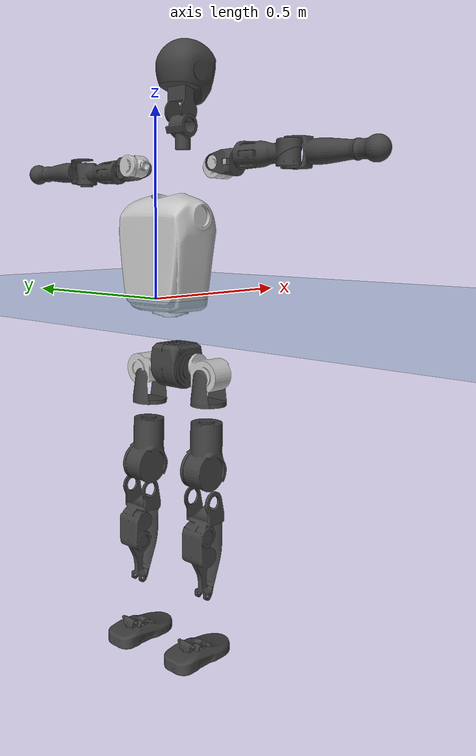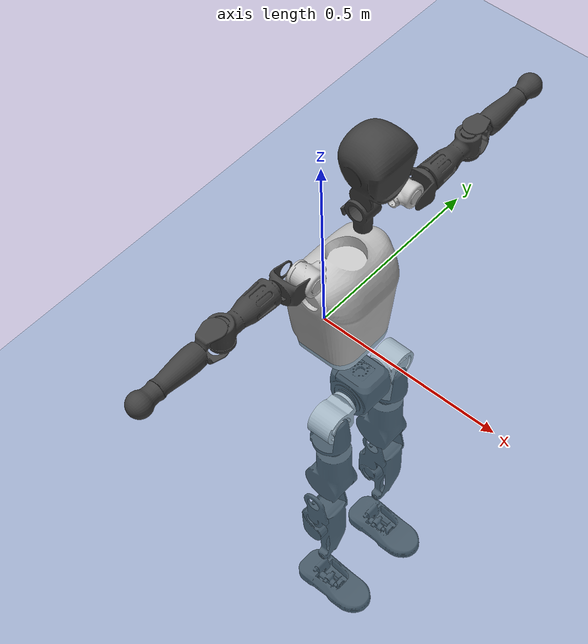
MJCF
<mujoco model="T1">
  <compiler angle="radian" assetdir="assets" balanceinertia="true" inertiafromgeom="false"/>

  <option timestep="0.005" density="1.2" viscosity="2e-05"/>

  <size nkey="1"/>

  <visual>
    <quality shadowsize="8192"/>
    <map shadowclip="0.5"/>
  </visual>

  <default>
    <default class="/">
      <joint armature="0.01" damping="0.01" frictionloss="0.1"/>
      <geom contype="0" conaffinity="0" group="1" solref="-1000 -80"/>
      <site size="0.01 0.005 0.005" group="5"/>
      <general forcelimited="true" biastype="affine" gainprm="25" biasprm="0 -25 -0.6"/>
      <default class="t1">
        <geom rgba="0.25 0.25 0.25 1"/>
        <default class="visual">
          <geom type="mesh" group="2"/>
        </default>
        <default class="collision">
          <geom group="3"/>
        </default>
        <default class="foot">
          <geom size="0.1115 0.05 0.015" type="box" condim="6" group="4" priority="1" solimp="0.015 1 0.015"/>
        </default>
        <default class="reward_collision_sphere">
          <geom group="5" rgba="1 0 0 1"/>
        </default>
      </default>
    </default>
  </default>

  <asset>
    <texture type="skybox" colorspace="auto" name="//unnamed_texture_0" builtin="gradient" rgb1="0.95 0.95 0.95" rgb2="0.95 0.95 0.95" width="100" height="600"/>
    <texture type="2d" colorspace="auto" name="texplane" builtin="checker" rgb1="0.345 0.575 0.748" rgb2="0.345 0.575 0.748" markrgb="1 1 1" width="512" height="512"/>
    <material name="MatPlane" class="/" texture="texplane" texuniform="true" texrepeat="2 2" specular="0.9"/>
    <mesh name="Trunk" class="/" file="Trunk.stl"/>
    <mesh name="H1" class="/" file="H1.stl"/>
    <mesh name="H2" class="/" file="H2.stl"/>
    <mesh name="AL1" class="/" file="AL1.stl"/>
    <mesh name="AL2" class="/" file="AL2.stl"/>
    <mesh name="AL3" class="/" file="AL3.stl"/>
    <mesh name="left_hand_link" class="/" file="left_hand_link.stl"/>
    <mesh name="AR1" class="/" file="AR1.stl"/>
    <mesh name="AR2" class="/" file="AR2.stl"/>
    <mesh name="AR3" class="/" file="AR3.stl"/>
    <mesh name="right_hand_link" class="/" file="right_hand_link.stl"/>
    <mesh name="Waist" class="/" file="Waist.stl"/>
    <mesh name="Hip_Pitch_Left" class="/" file="Hip_Pitch_Left.stl"/>
    <mesh name="Hip_Roll_Left" class="/" file="Hip_Roll_Left.stl"/>
    <mesh name="Hip_Yaw_Left" class="/" file="Hip_Yaw_Left.stl"/>
    <mesh name="Shank_Left" class="/" file="Shank_Left.stl"/>
    <mesh name="Ankle_Cross_Left" class="/" file="Ankle_Cross_Left.stl"/>
    <mesh name="left_foot_link" class="/" file="left_foot_link.stl"/>
    <mesh name="Hip_Pitch_Right" class="/" file="Hip_Pitch_Right.stl"/>
    <mesh name="Hip_Roll_Right" class="/" file="Hip_Roll_Right.stl"/>
    <mesh name="Hip_Yaw_Right" class="/" file="Hip_Yaw_Right.stl"/>
    <mesh name="Shank_Right" class="/" file="Shank_Right.stl"/>
    <mesh name="Ankle_Cross_Right" class="/" file="Ankle_Cross_Right.stl"/>
    <mesh name="right_foot_link" class="/" file="right_foot_link.stl"/>
  </asset>

  <worldbody>
    <geom name="floor" class="/" size="100 100 0.125" type="plane" group="0" material="MatPlane"/>
    <light name="toplight_shadow" class="/" pos="0 0 5" dir="0.0990148 0.0990148 -0.990148" type="directional" ambient="0.04 0.04 0.04" diffuse="0.55 0.55 0.55" specular="0.12 0.12 0.12"/>
    <light name="toplight_fill" class="/" pos="0 0 5" dir="0.0990148 0.0990148 -0.990148" type="directional" castshadow="false" ambient="0.04 0.04 0.04" diffuse="0.3 0.3 0.3" specular="0.08 0.08 0.08"/>
    <body name="trunk" childclass="t1" pos="0.000215709 0.00687953 -0.000407993" quat="0.999988 -0.000725459 0.0047439 -0.000696432">
      <inertial pos="0.0833393 0.00499946 0.165158" quat="0.998694 -0.0410913 -0.0196817 0.0231266" mass="33.0852" diaginertia="0.562615 0.139266 0.464196"/>
      <joint name="//unnamed_joint_0" type="free" armature="0" damping="0" frictionloss="0"/>
      <geom name="//unnamed_geom_1" class="visual" rgba="0.76 0.76 0.76 1" mesh="Trunk"/>
      <geom name="//unnamed_geom_2" class="collision" size="0.106228 0.141638 0.212457" pos="0.0923833 0 0.189311" type="box"/>
      <geom name="//unnamed_geom_3" class="reward_collision_sphere" size="0.162884" pos="0.0923833 0 0.157759"/>
      <geom name="//unnamed_geom_4" class="reward_collision_sphere" size="0.0212457" pos="0.0923833 0.0962052 0"/>
      <geom name="//unnamed_geom_5" class="reward_collision_sphere" size="0.0212457" pos="0.0923833 -0.0962052 0"/>
      <geom name="//unnamed_geom_6" class="reward_collision_sphere" size="0.0212457" pos="0.0923833 0.121105 0.283966"/>
      <geom name="//unnamed_geom_7" class="reward_collision_sphere" size="0.0212457" pos="0.0923833 -0.121105 0.283966"/>
      <site name="imu" pos="-0.0467178 0.00181181 0.0459124" size="0.0141638"/>
      <camera name="track" pos="0 -2.26365 0" quat="0.707107 0.707107 0 0" mode="trackcom"/>
      <camera name="ego_camera" pos="0.187846 0 0.662587" quat="-0.5 -0.5 0.5 0.5"/>
      <body name="H1" pos="0.106685 -0.000142672 0.396114" quat="1 -0.000356309 -0.000557852 -0.000145402">
        <inertial pos="-0.000462777 -0.00114985 0.0905988" quat="0.764369 -0.00881814 0.00222871 0.644715" mass="1.23745" diaginertia="0.00228655 0.000392488 0.00145489"/>
        <joint name="AAHead_yaw" pos="0 0 0" axis="0.00214203 -0.0105354 0.999942" range="-1.75627 1.57227" armature="0.00516061" damping="0.00613313" frictionloss="0.056131"/>
        <geom name="//unnamed_geom_8" class="visual" mesh="H1"/>
        <body name="H2" pos="0.00591827 0.0147744 0.101159" quat="0.999996 0.00023065 -0.00268571 -0.000333348">
          <inertial pos="0.00148926 0.0123439 0.169416" quat="0.988996 0.113605 -0.0905005 -0.0281144" mass="1.65135" diaginertia="0.0172885 0.0041857 0.0170557"/>
          <joint name="Head_pitch" pos="0 0 0" axis="-0.0209105 -0.999726 0.0105246" range="-1.2514 0.420001" armature="0.00826019" damping="0.0682692" frictionloss="0.130629"/>
          <geom name="//unnamed_geom_9" class="visual" mesh="H2"/>
          <geom name="//unnamed_geom_10" class="collision" size="0.11331" pos="0.0153972 0 0.173535"/>
          <geom name="//unnamed_geom_11" class="reward_collision_sphere" size="0.127474" pos="0.0307944 0 0.157759"/>
        </body>
      </body>
      <body name="AL1" pos="0.08592 0.120423 0.358141" quat="0.999977 -0.00454639 0.00152108 0.00470918">
        <inertial pos="0.00733076 0.0498213 0.000657513" quat="0.504763 0.497413 -0.500764 0.497021" mass="1.64325" diaginertia="0.012783 0.00305047 0.00355031"/>
        <joint name="Left_Shoulder_Pitch" pos="0 0 0" axis="0.0089598 0.998869 0.0467001" range="-3.15779 0.955515" armature="0.013353" damping="0.0693185" frictionloss="0.0913154"/>
        <geom name="//unnamed_geom_12" class="visual" rgba="0.76 0.76 0.76 1" mesh="AL1"/>
        <body name="AL2" pos="0.0120238 0.0481384 -0.0048547" quat="1 -3.52009e-05 -7.27225e-05 -8.74121e-05">
          <inertial pos="0.0118498 0.0304326 0.00664536" quat="0.482775 0.507863 -0.48942 0.519107" mass="0.41318" diaginertia="0.00313563 0.000556377 0.0016941"/>
          <joint name="Left_Shoulder_Roll" pos="0 0 0" axis="-0.999953 -0.00582532 0.00778289" stiffness="0.0732214" range="-1.70565 1.73065" armature="0.00495396" damping="0.0104213" frictionloss="0.14837"/>
          <geom name="//unnamed_geom_13" class="visual" mesh="AL2"/>
          <body name="AL3" pos="-0.00458504 0.0689166 -0.00730954" quat="0.999999 0.00138184 -0.000138567 0.000732747">
            <inertial pos="-0.0116382 0.109234 -0.00557839" quat="0.722936 0.690323 -0.00518675 0.0281104" mass="3.77027" diaginertia="0.108355 0.0268179 0.00768036"/>
            <joint name="Left_Elbow_Pitch" pos="0 0 0" axis="-0.00219658 -0.999468 0.0325361" stiffness="0.0283299" range="-2.00085 2.38095" armature="0.0040386" damping="0.0272491" frictionloss="0.138615"/>
            <geom name="//unnamed_geom_14" class="visual" mesh="AL3"/>
            <geom name="//unnamed_geom_15" class="collision" size="0.0424914 0.106228" pos="0 0.0565913 0" quat="0.707105 0.707108 0 0" type="cylinder"/>
            <geom name="//unnamed_geom_16" class="reward_collision_sphere" size="0.0509896"/>
            <body name="left_hand_link" pos="0.00332127 0.164157 0.00855297" quat="0.999978 -0.000566005 -0.00253452 0.00604207">
              <inertial pos="0.0133973 0.118238 -0.000969415" quat="0.697068 0.716965 -0.00739447 0.00167934" mass="0.904945" diaginertia="0.0798476 0.0138254 0.00176357"/>
              <joint name="Left_Elbow_Yaw" pos="0 0 0" axis="-0.000105742 0.000270448 1" range="-2.43088 0.273785" armature="0.015414" damping="0" frictionloss="0.146699"/>
              <geom name="//unnamed_geom_17" class="visual" mesh="left_hand_link"/>
              <geom name="//unnamed_geom_18" class="collision" size="0.0424914 0.123933" pos="0 0.147137 0" quat="0.707105 0.707108 0 0" type="cylinder"/>
              <geom name="//unnamed_geom_19" class="reward_collision_sphere" size="0.0708189"/>
              <geom name="//unnamed_geom_20" class="reward_collision_sphere" size="0.0495733" pos="0 0.124501 0"/>
              <geom name="//unnamed_geom_21" class="reward_collision_sphere" size="0.0495733" pos="0 0.243342 0"/>
            </body>
          </body>
        </body>
      </body>
      <body name="AR1" pos="0.0832979 -0.108203 0.343657" quat="0.999997 -0.000142245 -0.00193501 -0.00131107">
        <inertial pos="0.00727192 -0.0363687 0.0033589" quat="0.475999 0.487148 -0.529861 0.505331" mass="1.62159" diaginertia="0.0145826 0.00274188 0.00303115"/>
        <joint name="Right_Shoulder_Pitch" pos="0 0 0" axis="-0.0358559 -0.99841 0.0434988" stiffness="0.0716516" range="-1.21633 3.45224" armature="0.00613981" damping="0.0359815" frictionloss="0.187701"/>
        <geom name="//unnamed_geom_22" class="visual" rgba="0.76 0.76 0.76 1" mesh="AR1"/>
        <body name="AR2" pos="-0.0136431 -0.0617595 0.00771476" quat="0.999982 0.00410094 -0.00060119 -0.00444239">
          <inertial pos="0.0143929 -0.0425871 0.0051243" quat="0.534648 0.485522 -0.509248 0.468067" mass="0.524029" diaginertia="0.00348826 0.000543742 0.00179285"/>
          <joint name="Right_Shoulder_Roll" pos="0 0 0" axis="-0.999926 -0.00272661 -0.0118622" stiffness="0.00283825" range="-1.84223 1.47688" armature="0.015212" damping="0" frictionloss="0.0384282"/>
          <geom name="//unnamed_geom_23" class="visual" mesh="AR2"/>
          <body name="AR3" pos="-0.0078668 -0.0735165 0.014844" quat="1 2.66382e-05 0.000317929 8.67295e-05">
            <inertial pos="8.51905e-05 -0.0843727 0.00585044" quat="0.677119 0.734836 0.0390488 -0.00101878" mass="2.92667" diaginertia="0.112767 0.0251264 0.0052736"/>
            <joint name="Right_Elbow_Pitch" pos="0 0 0" axis="-0.00622966 0.998301 0.0579314" range="-2.03649 2.42587" armature="0.0234268" damping="0.00347552" frictionloss="0.0810253"/>
            <geom name="//unnamed_geom_24" class="visual" mesh="AR3"/>
            <geom name="//unnamed_geom_25" class="collision" size="0.0424914 0.106228" pos="0 -0.0565913 0" quat="0.707105 0.707108 0 0" type="cylinder"/>
            <geom name="//unnamed_geom_26" class="reward_collision_sphere" size="0.0509896"/>
            <body name="right_hand_link" pos="0.000646405 -0.1655 -0.00141027" quat="0.999986 0.000624856 0.00154362 0.00506426">
              <inertial pos="-0.000284086 -0.117575 -0.0114412" quat="0.70696 0.70725 0.00229174 0.000299544" mass="1.03412" diaginertia="0.077411 0.0162614 0.00225639"/>
              <joint name="Right_Elbow_Yaw" pos="0 0 0" axis="0.0391524 0.0120548 0.999161" range="0.00528121 2.26668" armature="0.00539471" damping="0.0812525" frictionloss="0.073861"/>
              <geom name="//unnamed_geom_27" class="visual" mesh="right_hand_link"/>
              <geom name="//unnamed_geom_28" class="collision" size="0.0424914 0.123933" pos="0 -0.147137 0" quat="0.707105 0.707108 0 0" type="cylinder"/>
              <geom name="//unnamed_geom_29" class="reward_collision_sphere" size="0.0708189"/>
              <geom name="//unnamed_geom_30" class="reward_collision_sphere" size="0.0495733" pos="0 -0.124501 0"/>
              <geom name="//unnamed_geom_31" class="reward_collision_sphere" size="0.0495733" pos="0 -0.243342 0"/>
            </body>
          </body>
        </body>
      </body>
      <body name="Waist" pos="0.0991701 0.0109201 -0.195787" quat="1 0.000287619 -3.2111e-05 -0.000169859">
        <inertial pos="0.0155578 0.00284126 0.00945788" quat="0.989638 0.00686563 -0.138513 -0.0372052" mass="8.67094" diaginertia="0.0536132 0.0117011 0.0538265"/>
        <joint name="Waist" pos="0 0 0" axis="0.0453054 -0.0375743 0.998266" stiffness="0.037533" range="-1.62146 1.81095" armature="0.0146158" damping="0" frictionloss="0.0607923"/>
        <geom name="//unnamed_geom_32" class="visual" mesh="Waist"/>
        <body name="Hip_Pitch_Left" pos="-1.58578e-06 0.122074 0.00258876" quat="0.999994 0.00270416 0.00188098 -0.000870693">
          <inertial pos="0.00200415 -0.00183279 -0.0281131" quat="0.976316 0.215895 0.00553792 0.0128864" mass="2.65407" diaginertia="0.0155345 0.00227363 0.0112529"/>
          <joint name="Left_Hip_Pitch" pos="0 0 0" axis="0.0580927 0.997248 -0.0460604" stiffness="0.0667647" range="-1.76932 1.30433" armature="0.00943651" damping="0.0608562" frictionloss="0.138574"/>
          <geom name="//unnamed_geom_33" class="visual" rgba="0.76 0.76 0.76 1" mesh="Hip_Pitch_Left"/>
          <body name="Hip_Roll_Left" pos="0.00427276 -0.0149043 -0.0426777" quat="0.999974 0.00479681 0.00511148 0.00170417">
            <inertial pos="0.0122068 0.000970944 -0.0871495" quat="0.710047 -0.0147834 -0.0259146 0.703522" mass="1.32781" diaginertia="0.0149957 0.00330439 0.00587881"/>
            <joint name="Left_Hip_Roll" pos="0 0 0" axis="-0.99782 0.0477332 0.0455651" range="-1.68474 0.181435" armature="0.0189018" damping="0.0125715" frictionloss="0.159706"/>
            <geom name="//unnamed_geom_34" class="visual" mesh="Hip_Roll_Left"/>
            <geom name="//unnamed_geom_35" class="reward_collision_sphere" size="0.0779008"/>
            <body name="Hip_Yaw_Left" pos="-0.00550357 -0.00180443 -0.12335" quat="1 -0.0003482 -0.000127358 6.3779e-05">
              <inertial pos="-0.0116029 -0.00361383 -0.140413" quat="0.670305 -0.020153 0.0205256 0.741528" mass="7.61587" diaginertia="0.222812 0.0554206 0.0290497"/>
              <joint name="Left_Hip_Yaw" pos="0 0 0" axis="0.000340466 -0.000955764 -0.999999" range="-0.810224 1.04232" armature="0.0144061" damping="0" frictionloss="0.135828"/>
              <geom name="//unnamed_geom_36" class="visual" mesh="Hip_Yaw_Left"/>
              <geom name="//unnamed_geom_37" class="collision" size="0.0708189 0.11331" type="cylinder"/>
              <body name="Shank_Left" pos="-0.0167587 0.0121239 -0.210603" quat="1 -0.000707019 4.04598e-05 0.000318141">
                <inertial pos="-0.00388175 0.0103179 -0.195569" quat="0.995339 -0.0510483 -0.0316126 0.0754659" mass="4.01653" diaginertia="0.272635 0.0573249 0.018898"/>
                <joint name="Left_Knee_Pitch" pos="0 0 0" axis="-0.00729712 0.999713 0.0228022" range="-0.103883 2.47672" armature="0.00620328" damping="0.0569304" frictionloss="0.165229"/>
                <geom name="//unnamed_geom_38" class="visual" mesh="Shank_Left"/>
                <geom name="//unnamed_geom_39" class="collision" size="0.0708189 0.106228" pos="0 0 -0.189311" type="cylinder"/>
                <geom name="//unnamed_geom_40" class="reward_collision_sphere" size="0.0920646"/>
                <body name="Ankle_Cross_Left" pos="0.000756749 -0.00938519 -0.430869" quat="0.999982 0.00520269 -0.00150781 0.0026989">
                  <inertial pos="0.000761454 0.0138347 -0.0110163" quat="0.437211 0.583969 0.515409 0.449645" mass="0.209011" diaginertia="0.000247391 4.07862e-05 9.77566e-05"/>
                  <joint name="Left_Ankle_Pitch" pos="0 0 0" axis="0.0247151 0.999104 -0.0343646" stiffness="0.016692" range="-0.924644 0.262445" armature="0.0173095" damping="0.00810713" frictionloss="0.13608"/>
                  <geom name="//unnamed_geom_41" class="visual" mesh="Ankle_Cross_Left"/>
                  <body name="left_foot_link" pos="0.0109809 0.0135479 -0.0144151" quat="1 -0.000757512 -0.00010622 2.98368e-05">
                    <inertial pos="-0.0120346 0.000256511 -0.0286576" quat="-0.00920044 0.626436 -0.0123453 0.77932" mass="2.00768" diaginertia="0.0251859 0.00448383 0.0237262"/>
                    <joint name="Left_Ankle_Roll" pos="0 0 0" axis="-0.999971 -0.0064689 0.00391233" range="-0.464817 0.448638" armature="0.0231569" damping="0.0486297" frictionloss="0.135143"/>
                    <geom name="//unnamed_geom_42" class="visual" mesh="left_foot_link"/>
                    <geom name="left_foot" class="foot" size="0.127509 0.0967226 0.0183477" pos="0.0153972 0 -0.0236638"/>
                    <geom name="//unnamed_geom_44" class="reward_collision_sphere" size="0.0736517" pos="0.0153972 0 -0.0236638"/>
                    <geom name="//unnamed_geom_45" class="reward_collision_sphere" size="0.0424914" pos="0.146274 -0.026032 -0.0236638"/>
                    <geom name="//unnamed_geom_46" class="reward_collision_sphere" size="0.0424914" pos="-0.107781 -0.026032 -0.0236638"/>
                    <site name="left_foot" class="foot" pos="0.0153972 0 -0.0236638" size="0.0141638"/>
                  </body>
                </body>
              </body>
            </body>
          </body>
        </body>
        <body name="Hip_Pitch_Right" pos="0.0103093 -0.121956 0.0086086" quat="0.999975 0.00237048 -0.00456307 0.00489326">
          <inertial pos="0.00309096 0.0234698 -0.0294961" quat="0.967984 -0.249805 -0.0138127 -0.0203356" mass="3.01763" diaginertia="0.0182015 0.00314625 0.0149776"/>
          <joint name="Right_Hip_Pitch" pos="0 0 0" axis="-0.00177247 -0.999995 -0.00259616" stiffness="0.0235248" range="-1.37849 1.8247" armature="0.0188143" damping="0.013079" frictionloss="0.0465589"/>
          <geom name="//unnamed_geom_47" class="visual" rgba="0.76 0.76 0.76 1" mesh="Hip_Pitch_Right"/>
          <body name="Hip_Roll_Right" pos="-0.00219503 0.00535056 -0.026149" quat="1 0.000608492 -0.000117365 0.000255251">
            <inertial pos="0.0140461 -0.0142203 -0.0711514" quat="0.70843 0.0243795 -0.00356635 0.705351" mass="1.03153" diaginertia="0.0139294 0.00274753 0.00492148"/>
            <joint name="Right_Hip_Roll" pos="0 0 0" axis="-0.999997 0.00071406 -0.00213813" range="-0.178262 1.56693" armature="0.00971255" damping="0.000109395" frictionloss="0.131619"/>
            <geom name="//unnamed_geom_48" class="visual" mesh="Hip_Roll_Right"/>
            <geom name="//unnamed_geom_49" class="reward_collision_sphere" size="0.0779008"/>
            <body name="Hip_Yaw_Right" pos="0.000192271 0.00861675 -0.127013" quat="0.999995 0.00208199 -0.00197069 0.00115043">
              <inertial pos="-0.0193922 0.00846613 -0.143924" quat="0.715039 -0.0288074 -0.0334828 0.697688" mass="6.33411" diaginertia="0.198247 0.0471882 0.0243747"/>
              <joint name="Right_Hip_Yaw" pos="0 0 0" axis="0.00590808 -0.00294698 -0.999978" stiffness="0.00306924" range="-0.957188 1.22162" armature="0.0245787" damping="0" frictionloss="0.0514928"/>
              <geom name="//unnamed_geom_50" class="visual" mesh="Hip_Yaw_Right"/>
              <geom name="//unnamed_geom_51" class="collision" size="0.0708189 0.11331" type="cylinder"/>
              <body name="Shank_Right" pos="-0.0266715 -0.0129848 -0.213663" quat="0.999982 -0.00290371 -0.00533027 0.000336916">
                <inertial pos="-0.00868892 -0.0103518 -0.206953" quat="0.997818 0.0433323 -0.0410496 -0.0282121" mass="5.71326" diaginertia="0.332472 0.0649356 0.0155848"/>
                <joint name="Right_Knee_Pitch" pos="0 0 0" axis="0.0479694 -0.998327 0.0322685" stiffness="0.0022202" range="-2.56354 0.21595" armature="0.0157634" damping="0" frictionloss="0.17882"/>
                <geom name="//unnamed_geom_52" class="visual" mesh="Shank_Right"/>
                <geom name="//unnamed_geom_53" class="collision" size="0.0708189 0.106228" pos="0 0 -0.189311" type="cylinder"/>
                <geom name="//unnamed_geom_54" class="reward_collision_sphere" size="0.0920646"/>
                <body name="Ankle_Cross_Right" pos="-0.00723568 0.0112344 -0.444473" quat="0.999972 0.00176087 0.00340537 -0.00640531">
                  <inertial pos="-0.000564567 0.00492901 -0.0226948" quat="0.464943 0.564804 0.528876 0.43025" mass="0.206283" diaginertia="0.000238241 4.77548e-05 0.000125372"/>
                  <joint name="Right_Ankle_Pitch" pos="0 0 0" axis="0.0230546 -0.999679 -0.0105033" stiffness="0.0102674" range="-0.127444 0.853436" armature="0.0138878" damping="0" frictionloss="0.153762"/>
                  <geom name="//unnamed_geom_55" class="visual" mesh="Ankle_Cross_Right"/>
                  <body name="right_foot_link" pos="0.00428781 0.011746 -0.0122648" quat="0.999999 -0.000808142 0.00116259 -4.28383e-05">
                    <inertial pos="-0.000226142 -0.00479387 -0.00351114" quat="0.000847385 0.60761 -0.00340054 0.794228" mass="2.07602" diaginertia="0.0233292 0.00439863 0.0239602"/>
                    <joint name="Right_Ankle_Roll" pos="0 0 0" axis="-0.998931 -0.0362167 -0.0287163" stiffness="0.0419184" range="-0.737923 0.457162" armature="0.00578048" damping="0.0120495" frictionloss="0.207469"/>
                    <geom name="//unnamed_geom_56" class="visual" mesh="right_foot_link"/>
                    <geom name="right_foot" class="foot" size="0.15348 0.0957695 0.0195621" pos="0.0153972 0 -0.0236638"/>
                    <geom name="//unnamed_geom_58" class="reward_collision_sphere" size="0.0566551"/>
                    <geom name="//unnamed_geom_59" class="reward_collision_sphere" size="0.0424914" pos="0.0153972 0 -0.0236638"/>
                    <geom name="//unnamed_geom_60" class="reward_collision_sphere" size="0.0424914" pos="0.146274 0.026032 -0.0236638"/>
                    <geom name="//unnamed_geom_61" class="reward_collision_sphere" size="0.0424914" pos="-0.107781 0.026032 -0.0236638"/>
                    <site name="right_foot" class="foot" pos="0.0153972 0 -0.0236638" size="0.0141638"/>
                  </body>
                </body>
              </body>
            </body>
          </body>
        </body>
      </body>
    </body>
  </worldbody>

  <contact>
    <pair class="/" geom1="floor" geom2="left_foot" name="//unnamed_contact_0"/>
    <pair class="/" geom1="floor" geom2="right_foot" name="//unnamed_contact_1"/>
  </contact>

  <actuator>
    <general name="AAHead_yaw" class="/" joint="AAHead_yaw" forcerange="-12.8332 12.8332" gainprm="40.0163" biasprm="0 -40.0163 -0.925039"/>
    <general name="Head_pitch" class="/" joint="Head_pitch" forcerange="-6.56361 6.56361" gainprm="40.0163" biasprm="0 -40.0163 -0.925039"/>
    <general name="Left_Shoulder_Pitch" class="/" joint="Left_Shoulder_Pitch" forcerange="-27.2003 27.2003" gainprm="40.0163" biasprm="0 -40.0163 -0.925039"/>
    <general name="Left_Shoulder_Roll" class="/" joint="Left_Shoulder_Roll" forcerange="-14.4928 14.4928" gainprm="40.0163" biasprm="0 -40.0163 -0.925039"/>
    <general name="Left_Elbow_Pitch" class="/" joint="Left_Elbow_Pitch" forcerange="-26.7636 26.7636" gainprm="40.0163" biasprm="0 -40.0163 -0.925039"/>
    <general name="Left_Elbow_Yaw" class="/" joint="Left_Elbow_Yaw" forcerange="-27.2941 27.2941" gainprm="40.0163" biasprm="0 -40.0163 -0.925039"/>
    <general name="Right_Shoulder_Pitch" class="/" joint="Right_Shoulder_Pitch" forcerange="-25.9276 25.9276" gainprm="40.0163" biasprm="0 -40.0163 -0.925039"/>
    <general name="Right_Shoulder_Roll" class="/" joint="Right_Shoulder_Roll" forcerange="-30.29 30.29" gainprm="40.0163" biasprm="0 -40.0163 -0.925039"/>
    <general name="Right_Elbow_Pitch" class="/" joint="Right_Elbow_Pitch" forcerange="-22.9094 22.9094" gainprm="40.0163" biasprm="0 -40.0163 -0.925039"/>
    <general name="Right_Elbow_Yaw" class="/" joint="Right_Elbow_Yaw" forcerange="-28.2941 28.2941" gainprm="40.0163" biasprm="0 -40.0163 -0.925039"/>
    <general name="Waist" class="/" joint="Waist" forcerange="-60.9766 60.9766" gainprm="40.0163" biasprm="0 -40.0163 -0.925039"/>
    <general name="Left_Hip_Pitch" class="/" joint="Left_Hip_Pitch" forcerange="-74.6123 74.6123" gainprm="40.0163" biasprm="0 -40.0163 -0.925039"/>
    <general name="Left_Hip_Roll" class="/" joint="Left_Hip_Roll" forcerange="-41.5518 41.5518" gainprm="40.0163" biasprm="0 -40.0163 -0.925039"/>
    <general name="Left_Hip_Yaw" class="/" joint="Left_Hip_Yaw" forcerange="-46.8506 46.8506" gainprm="40.0163" biasprm="0 -40.0163 -0.925039"/>
    <general name="Left_Knee_Pitch" class="/" joint="Left_Knee_Pitch" forcerange="-119.184 119.184" gainprm="40.0163" biasprm="0 -40.0163 -0.925039"/>
    <general name="Left_Ankle_Pitch" class="/" joint="Left_Ankle_Pitch" forcerange="-13.4271 13.4271" gainprm="40.0163" biasprm="0 -40.0163 -0.925039"/>
    <general name="Left_Ankle_Roll" class="/" joint="Left_Ankle_Roll" forcerange="-33.0425 33.0425" gainprm="40.0163" biasprm="0 -40.0163 -0.925039"/>
    <general name="Right_Hip_Pitch" class="/" joint="Right_Hip_Pitch" forcerange="-67.487 67.487" gainprm="40.0163" biasprm="0 -40.0163 -0.925039"/>
    <general name="Right_Hip_Roll" class="/" joint="Right_Hip_Roll" forcerange="-59.706 59.706" gainprm="40.0163" biasprm="0 -40.0163 -0.925039"/>
    <general name="Right_Hip_Yaw" class="/" joint="Right_Hip_Yaw" forcerange="-22.2235 22.2235" gainprm="40.0163" biasprm="0 -40.0163 -0.925039"/>
    <general name="Right_Knee_Pitch" class="/" joint="Right_Knee_Pitch" forcerange="-73.0355 73.0355" gainprm="40.0163" biasprm="0 -40.0163 -0.925039"/>
    <general name="Right_Ankle_Pitch" class="/" joint="Right_Ankle_Pitch" forcerange="-26.9652 26.9652" gainprm="40.0163" biasprm="0 -40.0163 -0.925039"/>
    <general name="Right_Ankle_Roll" class="/" joint="Right_Ankle_Roll" forcerange="-20.2319 20.2319" gainprm="40.0163" biasprm="0 -40.0163 -0.925039"/>
  </actuator>

  <sensor>
    <gyro site="imu" name="imu_angular_velocity"/>
    <velocimeter site="imu" name="imu_linear_velocity"/>
    <framelinvel objtype="site" objname="left_foot" name="left_foot_global_linear_velocity"/>
    <framelinvel objtype="site" objname="right_foot" name="right_foot_global_linear_velocity"/>
  </sensor>

  <keyframe>
    <key name="home" qpos="0 0 0.6385 1 0 0 0 0 0 0 1.4 0 -0.4 0 -1.4 0 0.4 0 -0.4 0 0 0.8 -0.4 0 0.4 0 0 -0.8 0.4 0"/>
  </keyframe>
</mujoco>
